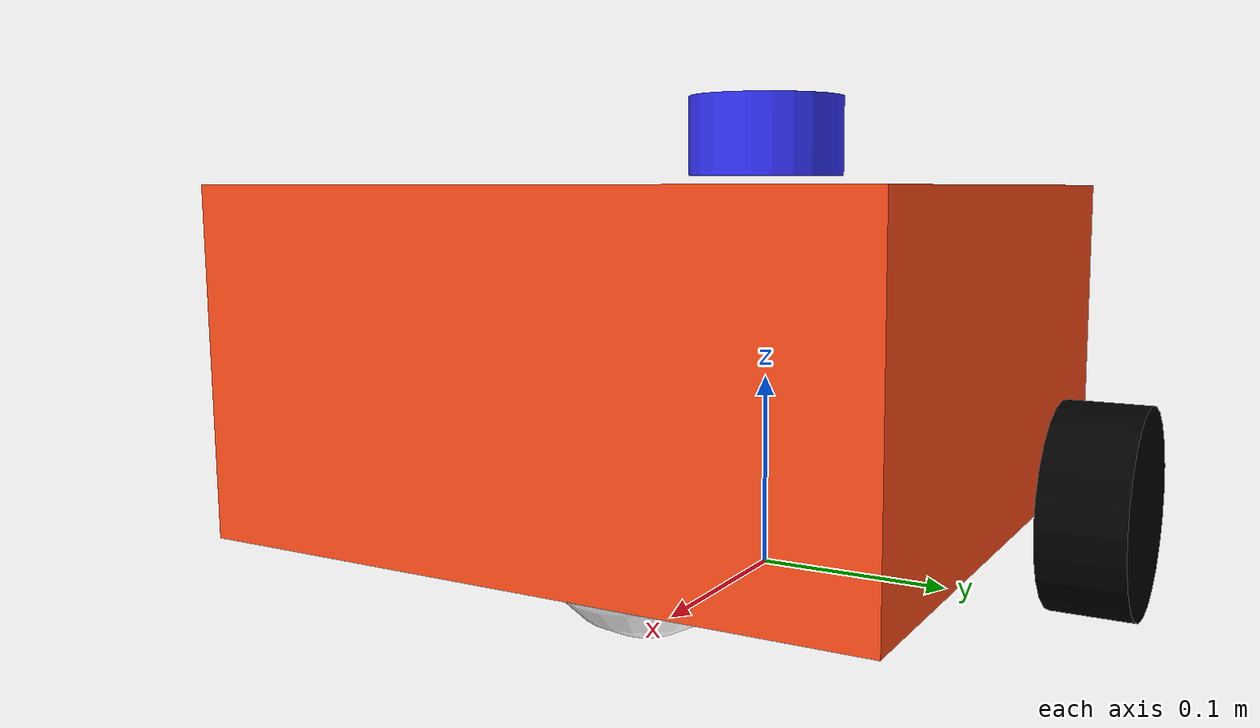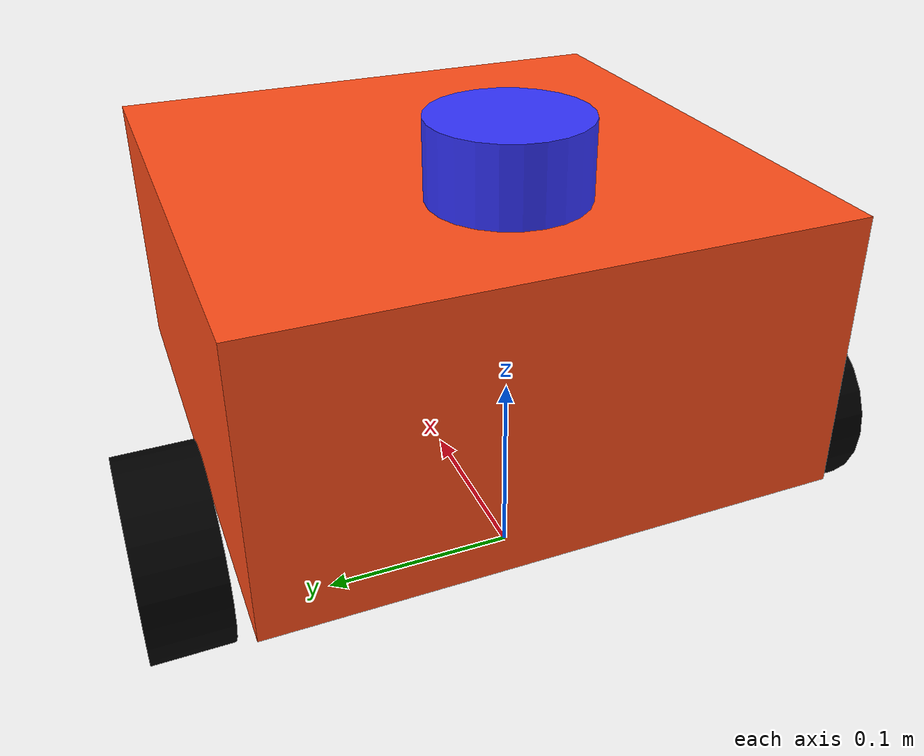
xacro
<?xml version="1.0"?>
<robot xmlns:xacro="http://www.ros.org/wiki/xacro" name="my_bot">

  <xacro:include filename="robot_core.xacro"/>
  <xacro:include filename="lidar.xacro"/>
  <xacro:include filename="gazebo_control.xacro"/>

</robot>

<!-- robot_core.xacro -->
<robot xmlns:xacro="http://www.ros.org/wiki/xacro">

  <xacro:include filename="inertial_macros.xacro"/>

  <!-- ================= Materials (RViz colors) ================= -->
  <material name="white"><color rgba="1 1 1 1"/></material>
  <material name="orange"><color rgba="1 0.3 0.1 1"/></material>
  <material name="blue"><color rgba="0.2 0.2 1 1"/></material>
  <material name="black"><color rgba="0 0 0 1"/></material>

  <!-- ================= base_footprint (root) ================= -->
  <link name="base_footprint"/>

  <joint name="base_joint" type="fixed">
    <parent link="base_footprint"/>
    <child  link="base_link"/>
    <!-- base_link is one wheel-radius above the ground -->
    <origin xyz="0 0 0.05" rpy="0 0 0"/>
  </joint>

  <!-- ================= base_link (drive axle) ================= -->
  <link name="base_link"/>

  <!-- ================= Chassis ================= -->
  <joint name="chassis_joint" type="fixed">
    <parent link="base_link"/>
    <child  link="chassis"/>
    <origin xyz="0 0 0" rpy="0 0 0"/>
  </joint>

  <link name="chassis">
    <!-- box 0.3(x) x 0.3(y) x 0.15(z), bottom flush with axle height -->
    <visual>
      <origin xyz="0.075 0 0.075" rpy="0 0 0"/>
      <geometry><box size="0.3 0.3 0.15"/></geometry>
      <material name="orange"/>
    </visual>
    <collision>
      <origin xyz="0.075 0 0.075" rpy="0 0 0"/>
      <geometry><box size="0.3 0.3 0.15"/></geometry>
    </collision>
    <xacro:inertial_box mass="0.5" l="0.3" w="0.3" h="0.15">
      <origin xyz="0.075 0 0.075" rpy="0 0 0"/>
    </xacro:inertial_box>
  </link>

  <!-- ================= Left drive wheel ================= -->
  <joint name="left_wheel_joint" type="continuous">
    <parent link="base_link"/>
    <child  link="left_wheel"/>
    <!-- +Y side; rotate cylinder so its axis points along the wheel axle -->
    <origin xyz="0 0.175 0" rpy="-1.5708 0 0"/>
    <axis xyz="0 0 1"/>
  </joint>

  <link name="left_wheel">
    <visual>
      <geometry><cylinder radius="0.05" length="0.04"/></geometry>
      <material name="black"/>
    </visual>
    <collision>
      <geometry><cylinder radius="0.05" length="0.04"/></geometry>
    </collision>
    <xacro:inertial_cylinder mass="0.1" length="0.04" radius="0.05">
      <origin xyz="0 0 0" rpy="0 0 0"/>
    </xacro:inertial_cylinder>
  </link>

  <!-- ================= Right drive wheel ================= -->
  <joint name="right_wheel_joint" type="continuous">
    <parent link="base_link"/>
    <child  link="right_wheel"/>
    <origin xyz="0 -0.175 0" rpy="1.5708 0 0"/>
    <axis xyz="0 0 -1"/>
  </joint>

  <link name="right_wheel">
    <visual>
      <geometry><cylinder radius="0.05" length="0.04"/></geometry>
      <material name="black"/>
    </visual>
    <collision>
      <geometry><cylinder radius="0.05" length="0.04"/></geometry>
    </collision>
    <xacro:inertial_cylinder mass="0.1" length="0.04" radius="0.05">
      <origin xyz="0 0 0" rpy="0 0 0"/>
    </xacro:inertial_cylinder>
  </link>

  <!-- ================= Caster wheel (passive) ================= -->
  <joint name="caster_wheel_joint" type="fixed">
    <parent link="chassis"/>
    <child  link="caster_wheel"/>
    <!-- front of the robot, sphere center at axle height so it touches the floor -->
    <origin xyz="0.12 0 0" rpy="0 0 0"/>
  </joint>

  <link name="caster_wheel">
    <visual>
      <geometry><sphere radius="0.05"/></geometry>
      <material name="white"/>
    </visual>
    <collision>
      <geometry><sphere radius="0.05"/></geometry>
    </collision>
    <xacro:inertial_sphere mass="0.05" radius="0.05">
      <origin xyz="0 0 0" rpy="0 0 0"/>
    </xacro:inertial_sphere>
  </link>

  <!-- Gazebo - make the caster frictionless so it slides like a ball caster -->
  <gazebo reference="caster_wheel">
    <mu1 value="0.001"/>
    <mu2 value="0.001"/>
  </gazebo>

</robot>

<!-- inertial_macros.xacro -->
<robot xmlns:xacro="http://www.ros.org/wiki/xacro">

  <!-- Solid box - x=length(l), y=width(w), z=height(h) -->
  <xacro:macro name="inertial_box" params="mass l w h *origin">
    <inertial>
      <xacro:insert_block name="origin"/>
      <mass value="${mass}"/>
      <inertia
        ixx="${(1.0/12.0) * mass * (w*w + h*h)}" ixy="0.0" ixz="0.0"
        iyy="${(1.0/12.0) * mass * (l*l + h*h)}" iyz="0.0"
        izz="${(1.0/12.0) * mass * (l*l + w*w)}"/>
    </inertial>
  </xacro:macro>

  <!-- Solid cylinder about its own axis (z is the cylinder axis) -->
  <xacro:macro name="inertial_cylinder" params="mass length radius *origin">
    <inertial>
      <xacro:insert_block name="origin"/>
      <mass value="${mass}"/>
      <inertia
        ixx="${(1.0/12.0) * mass * (3*radius*radius + length*length)}" ixy="0.0" ixz="0.0"
        iyy="${(1.0/12.0) * mass * (3*radius*radius + length*length)}" iyz="0.0"
        izz="${(1.0/2.0) * mass * (radius*radius)}"/>
    </inertial>
  </xacro:macro>

  <!-- Solid sphere -->
  <xacro:macro name="inertial_sphere" params="mass radius *origin">
    <inertial>
      <xacro:insert_block name="origin"/>
      <mass value="${mass}"/>
      <inertia
        ixx="${(2.0/5.0) * mass * (radius*radius)}" ixy="0.0" ixz="0.0"
        iyy="${(2.0/5.0) * mass * (radius*radius)}" iyz="0.0"
        izz="${(2.0/5.0) * mass * (radius*radius)}"/>
    </inertial>
  </xacro:macro>

</robot>

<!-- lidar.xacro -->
<robot xmlns:xacro="http://www.ros.org/wiki/xacro">

  <joint name="lidar_joint" type="fixed">
    <parent link="chassis"/>
    <child  link="lidar_link"/>
    <!-- centered on chassis, on top (chassis top = z 0.15) + small standoff -->
    <origin xyz="0 0 0.175" rpy="0 0 0"/>
  </joint>

  <link name="lidar_link">
    <visual>
      <geometry><cylinder radius="0.04" length="0.04"/></geometry>
      <material name="blue"/>
    </visual>
    <collision>
      <geometry><cylinder radius="0.04" length="0.04"/></geometry>
    </collision>
    <xacro:inertial_cylinder mass="0.05" length="0.04" radius="0.04">
      <origin xyz="0 0 0" rpy="0 0 0"/>
    </xacro:inertial_cylinder>
  </link>

  <!-- ============ Gazebo Harmonic GPU lidar sensor ============ -->
  <gazebo reference="lidar_link">
    <sensor name="lidar" type="gpu_lidar">
      <topic>scan</topic>
      <update_rate>10</update_rate>
      <gz_frame_id>lidar_link</gz_frame_id>
      <lidar>
        <scan>
          <horizontal>
            <samples>360</samples>
            <resolution>1</resolution>
            <min_angle>-3.141592</min_angle>
            <max_angle>3.141592</max_angle>
          </horizontal>
        </scan>
        <range>
          <min>0.12</min>
          <max>12.0</max>
          <resolution>0.01</resolution>
        </range>
      </lidar>
      <always_on>1</always_on>
      <visualize>true</visualize>
    </sensor>
  </gazebo>

</robot>
